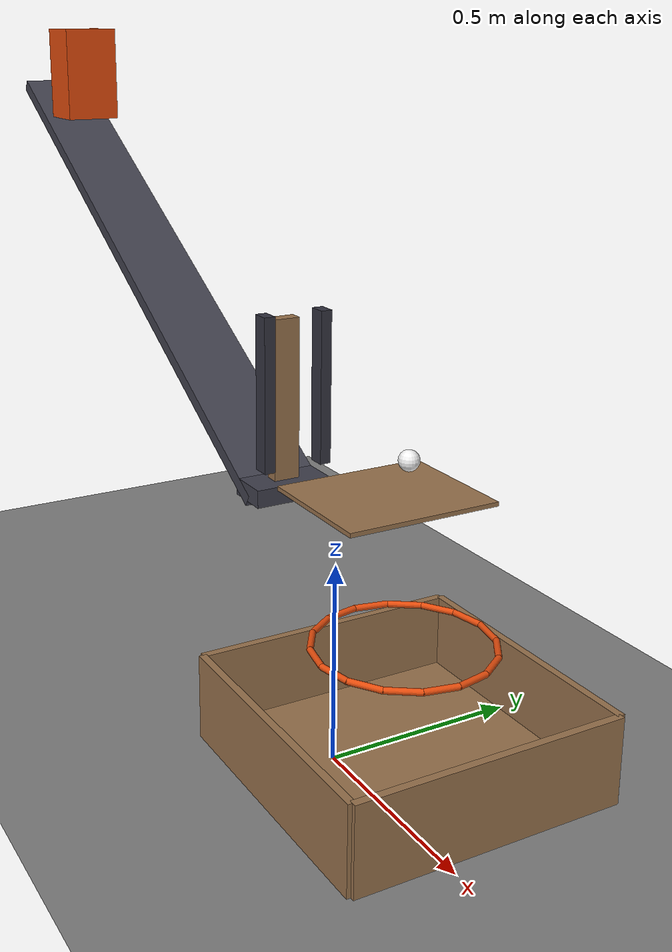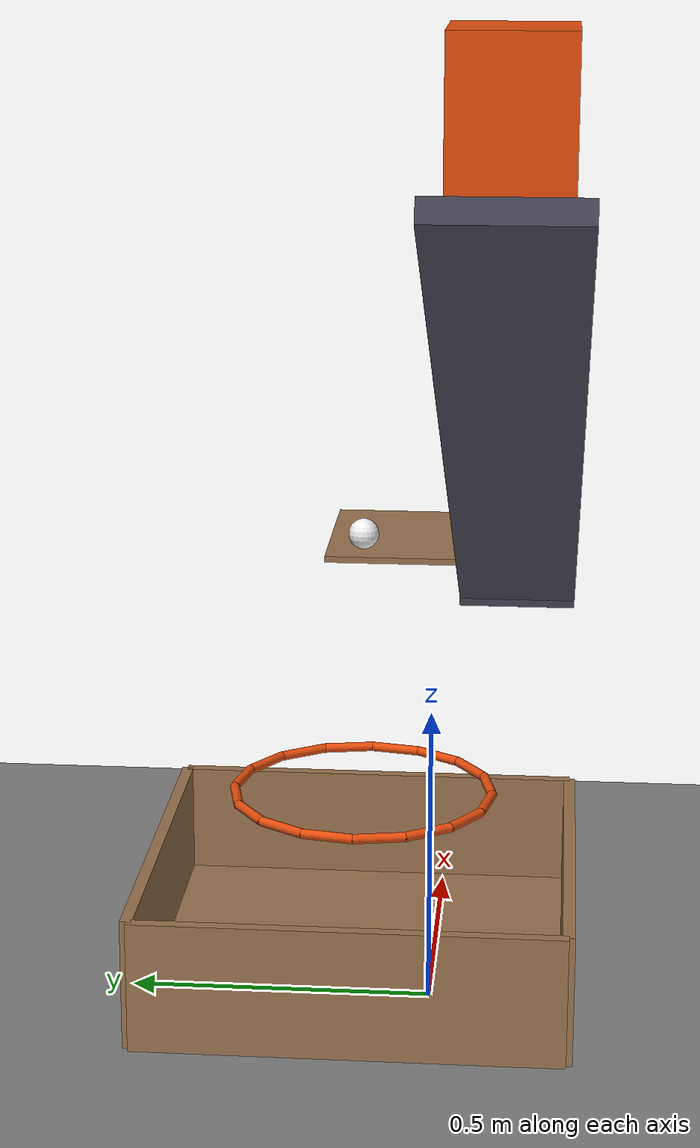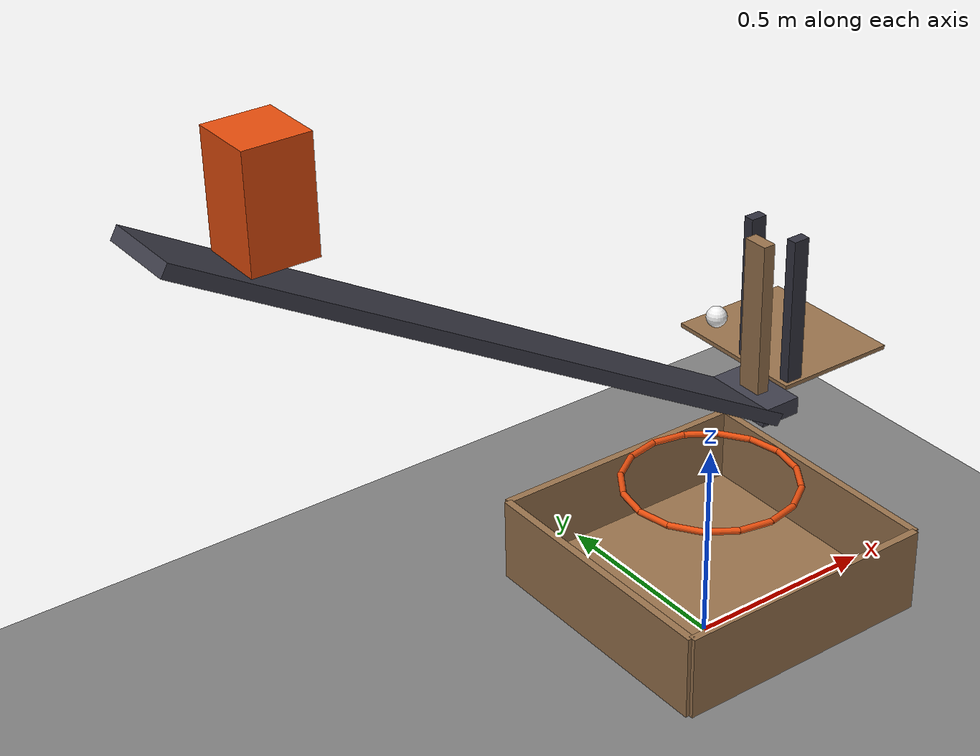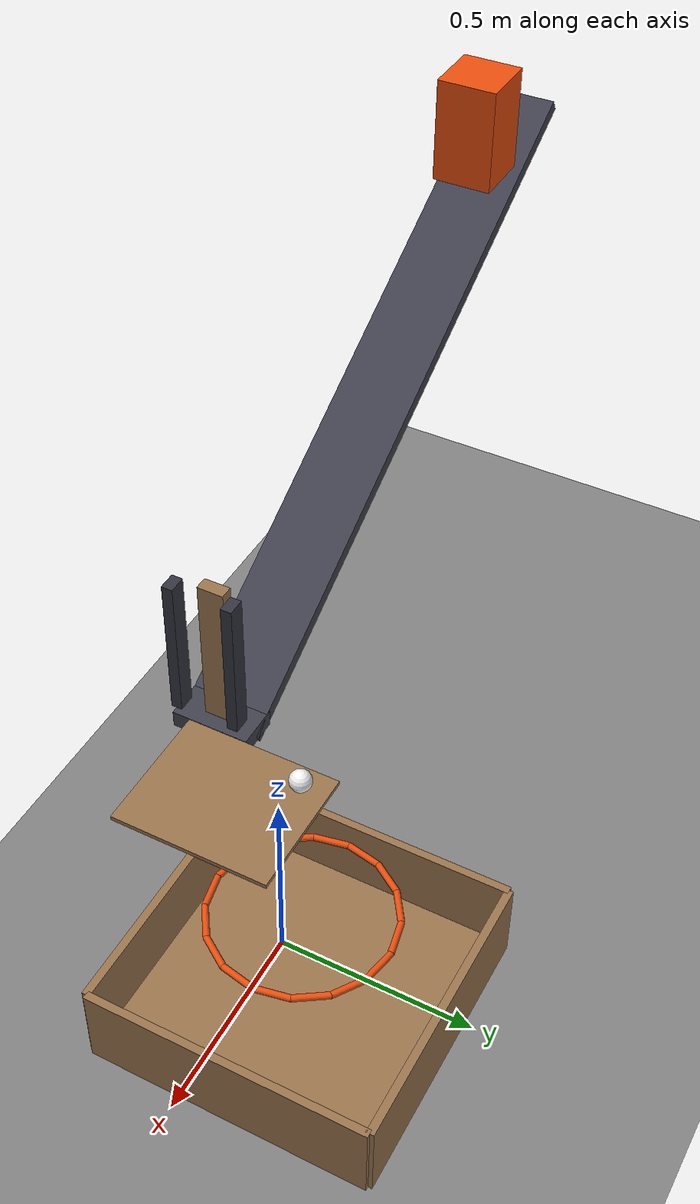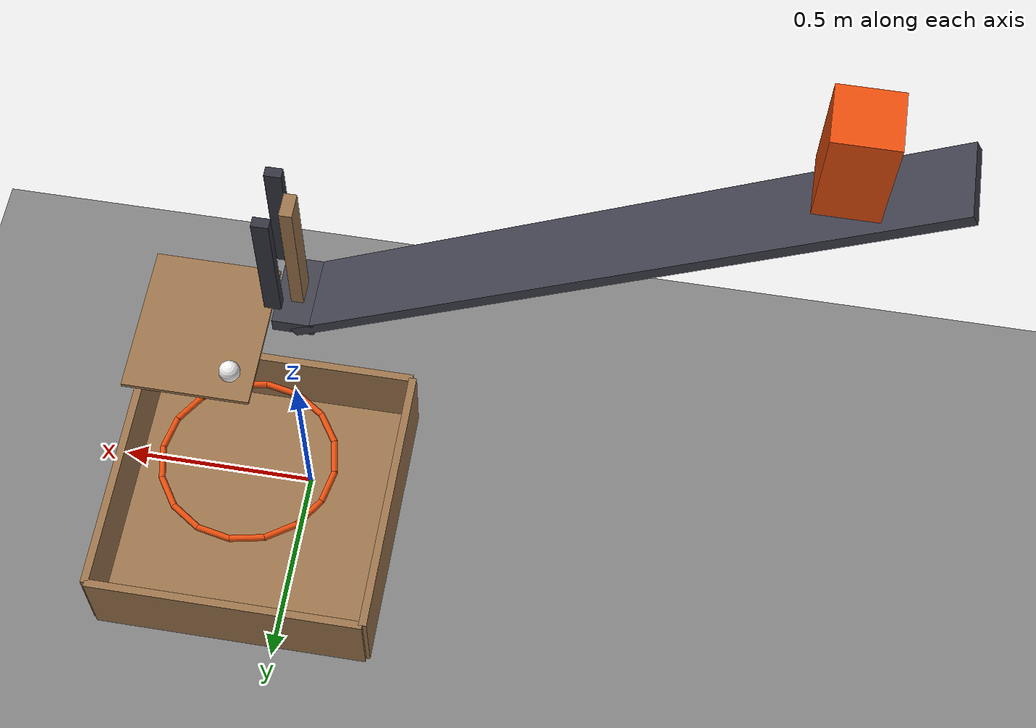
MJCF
<mujoco model="cart_domino_flap_release">
  <compiler angle="radian"/>
  <option timestep="0.002"/>
  <worldbody>
    <geom name="floor" type="plane" size="6 6 0.1" friction="0.8 0.01 0.01"/>
    <body name="rail">
      <geom name="rail" type="box" pos="-0.7078 -0.135 1.10865" size="0.817298 0.09 0.015" euler="0 0.5236 0" friction="0.015 0.005 0.0001" rgba="0.25 0.25 0.3 1"/>
    </body>
    <body name="landing">
      <geom name="landing" type="box" pos="0 -0.135 0.72" size="0.05 0.09 0.02" friction="1.1 0.005 0.0001" rgba="0.25 0.25 0.3 1"/>
    </body>
    <body name="cart" pos="-1.1748 -0.135 1.558">
      <freejoint/>
      <geom name="cart" type="box" pos="0 0 0" size="0.07 0.07 0.12" mass="0.6" friction="0.015 0.005 0.0001" solref="0.01 1" rgba="0.9 0.3 0.05 1"/>
    </body>
    <body name="domino" pos="0 -0.135 0.92">
      <freejoint/>
      <geom name="domino" type="box" pos="0 0 0" size="0.015 0.03 0.18" mass="0.7" friction="1.1 0.005 0.0001" solref="0.01 1" rgba="0.6 0.45 0.3 1"/>
    </body>
    <body name="right cart stop">
      <geom name="right cart stop" type="box" pos="0.045 -0.2025 0.95" size="0.02 0.0125 0.17" solref="0.01 1" rgba="0.2 0.2 0.25 1"/>
    </body>
    <body name="left cart stop">
      <geom name="left cart stop" type="box" pos="0.045 -0.0675 0.95" size="0.02 0.0125 0.17" solref="0.01 1" rgba="0.2 0.2 0.25 1"/>
    </body>
    <body name="flap" pos="0.355 0 0.74">
      <joint name="flap_hinge" type="hinge" pos="0 0 0" axis="0 1 0" limited="true" range="-1.13446 0" stiffness="0.035" springref="2.61799" damping="0.003"/>
      <geom name="flap" type="box" pos="-0.15 0 0" size="0.15 0.18 0.005" mass="0.02" friction="0.25 0.005 0.0001" solref="0.01 1" rgba="0.6 0.45 0.3 1"/>
    </body>
    <body name="ring">
      <geom name="ring_00" type="capsule" size="0.008" fromto="0.328 0.12 0.32 0.311406 0.203425 0.32" rgba="0.9 0.3 0.05 1"/>
      <geom name="ring_01" type="capsule" size="0.008" fromto="0.311406 0.203425 0.32 0.264149 0.274149 0.32" rgba="0.9 0.3 0.05 1"/>
      <geom name="ring_02" type="capsule" size="0.008" fromto="0.264149 0.274149 0.32 0.193425 0.321406 0.32" rgba="0.9 0.3 0.05 1"/>
      <geom name="ring_03" type="capsule" size="0.008" fromto="0.193425 0.321406 0.32 0.11 0.338 0.32" rgba="0.9 0.3 0.05 1"/>
      <geom name="ring_04" type="capsule" size="0.008" fromto="0.11 0.338 0.32 0.026575 0.321406 0.32" rgba="0.9 0.3 0.05 1"/>
      <geom name="ring_05" type="capsule" size="0.008" fromto="0.026575 0.321406 0.32 -0.0441493 0.274149 0.32" rgba="0.9 0.3 0.05 1"/>
      <geom name="ring_06" type="capsule" size="0.008" fromto="-0.0441493 0.274149 0.32 -0.0914057 0.203425 0.32" rgba="0.9 0.3 0.05 1"/>
      <geom name="ring_07" type="capsule" size="0.008" fromto="-0.0914057 0.203425 0.32 -0.108 0.12 0.32" rgba="0.9 0.3 0.05 1"/>
      <geom name="ring_08" type="capsule" size="0.008" fromto="-0.108 0.12 0.32 -0.0914057 0.036575 0.32" rgba="0.9 0.3 0.05 1"/>
      <geom name="ring_09" type="capsule" size="0.008" fromto="-0.0914057 0.036575 0.32 -0.0441493 -0.0341493 0.32" rgba="0.9 0.3 0.05 1"/>
      <geom name="ring_10" type="capsule" size="0.008" fromto="-0.0441493 -0.0341493 0.32 0.026575 -0.0814057 0.32" rgba="0.9 0.3 0.05 1"/>
      <geom name="ring_11" type="capsule" size="0.008" fromto="0.026575 -0.0814057 0.32 0.11 -0.098 0.32" rgba="0.9 0.3 0.05 1"/>
      <geom name="ring_12" type="capsule" size="0.008" fromto="0.11 -0.098 0.32 0.193425 -0.0814057 0.32" rgba="0.9 0.3 0.05 1"/>
      <geom name="ring_13" type="capsule" size="0.008" fromto="0.193425 -0.0814057 0.32 0.264149 -0.0341493 0.32" rgba="0.9 0.3 0.05 1"/>
      <geom name="ring_14" type="capsule" size="0.008" fromto="0.264149 -0.0341493 0.32 0.311406 0.036575 0.32" rgba="0.9 0.3 0.05 1"/>
      <geom name="ring_15" type="capsule" size="0.008" fromto="0.311406 0.036575 0.32 0.328 0.12 0.32" rgba="0.9 0.3 0.05 1"/>
    </body>
    <body name="box">
      <geom name="box_base" type="box" pos="0.11 0.12 0.015" size="0.35 0.35 0.015" friction="0.9 0.02 0.02" solref="0.01 1" rgba="0.6 0.45 0.3 1"/>
      <geom name="box_near_wall" type="box" pos="-0.24 0.12 0.11" size="0.01 0.35 0.11" friction="0.9 0.02 0.02" solref="0.01 1" rgba="0.6 0.45 0.3 1"/>
      <geom name="box_far_wall" type="box" pos="0.46 0.12 0.11" size="0.01 0.35 0.11" friction="0.9 0.02 0.02" solref="0.01 1" rgba="0.6 0.45 0.3 1"/>
      <geom name="box_left_wall" type="box" pos="0.11 0.47 0.11" size="0.35 0.01 0.11" friction="0.9 0.02 0.02" solref="0.01 1" rgba="0.6 0.45 0.3 1"/>
      <geom name="box_right_wall" type="box" pos="0.11 -0.23 0.11" size="0.35 0.01 0.11" friction="0.9 0.02 0.02" solref="0.01 1" rgba="0.6 0.45 0.3 1"/>
    </body>
    <body name="ball" pos="0.11 0.12 0.77">
      <freejoint/>
      <geom name="ball" type="sphere" pos="0 0 0" size="0.025" mass="0.02" condim="6" friction="0.25 0.01 0.01" solref="0.01 1" rgba="0.95 0.95 0.95 1"/>
    </body>
  </worldbody>
  <keyframe>
    <key name="start" qpos="-1.1748 -0.135 1.558 1 0 0 0 0 -0.135 0.92 1 0 0 0 0 0.11 0.12 0.77 1 0 0 0" qvel="0 0 0 0 0 0 0 0 0 0 0 0 0 0 0 0 0 0 0"/>
  </keyframe>
</mujoco>
